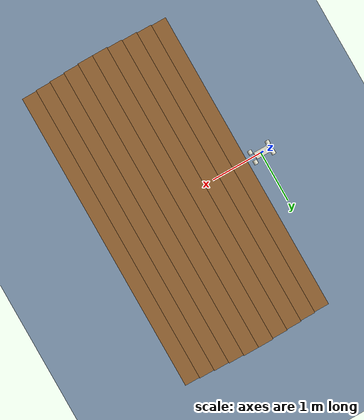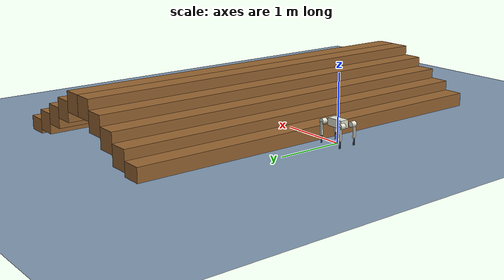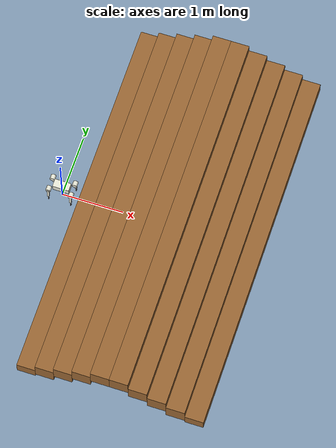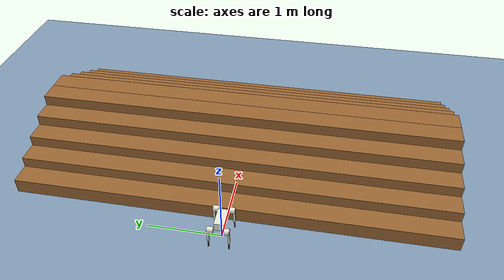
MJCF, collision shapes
<mujoco model="a1_description">
    <compiler angle="radian" meshdir="../meshes/" />
    <size njmax="500" nconmax="100" />
    <option gravity='0 0 -9.806' iterations='50' solver='Newton' timestep='0.002'/>

    <default>
        <geom contype="1" conaffinity="1" friction="0.6 0.3 0.3" rgba="0.5 0.6 0.7 1" margin="0.001" group="0"/>

        <light castshadow="false" diffuse="1 1 1"/>
        <motor ctrlrange="-33.5 33.5" ctrllimited="true"/>
        <camera fovy="60"/>
        <joint damping="0.01" armature="0.01" frictionloss="0.2" />

    </default>

    <asset>
        <mesh name="trunk" file="trunk.stl" />
        <mesh name="hip" file="hip.stl" />
        <mesh name="thigh_mirror" file="thigh_mirror.stl" />
        <mesh name="calf" file="calf.stl" />
        <mesh name="thigh" file="thigh.stl" />
    </asset>

    <visual>
        <headlight diffuse="0.6 0.6 0.6" ambient="0.1 0.1 0.1" specular="0.9 0.9 0.9"/>
        <rgba haze="0.15 0.25 0.35 1"/>
        <global azimuth="-140" elevation="-20"/>
    </visual>
    <asset>
        <texture type="skybox" builtin="flat" rgb1="0 0 0" rgb2="0 0 0" width="512" height="512"/>
        <texture type="2d" name="groundplane" builtin="checker" mark="edge" rgb1="0.2 0.3 0.4" rgb2="0.1 0.2 0.3" markrgb="0.8 0.8 0.8" width="300" height="300"/>
        <material name="groundplane" texture="groundplane" texuniform="true" texrepeat="5 5" reflectance="0.2"/>
    </asset>

    <worldbody>
        <light directional="true" diffuse=".8 .8 .8" pos="0 0 10" dir="0 0 -10"/>
        <camera name="track" mode="trackcom" pos="0 -1.3 1.6" xyaxes="1 0 0 0 0.707 0.707"/>
        <geom name='floor' type='plane' conaffinity='1' condim='3' contype='1' material='groundplane' pos='0 0 0' size='0 0 1'/>

        <!-- 五级楼梯 -->
        <!-- size:长方体半尺寸 x半长 y半宽 z半高； pos:几何体中心坐标(x,y,z) friction:摩擦系数(滑动、扭转、滚动) rgbs:颜色和透明度(可选)-->

        <!-- 五级楼梯 -->
        <!-- size:长方体半尺寸 x半长 y半宽 z半高； pos:几何体中心坐标(x,y,z) friction:摩擦系数(滑动、扭转、滚动) rgbs:颜色和透明度(可选)-->
        <geom name="step1" type="box" size="0.15 3.0 0.15" pos="0.45 0 0.05" friction="1 0.5 0.1" rgba="0.6 0.4 0.2 1"/>
        <geom name="step2" type="box" size="0.15 3.0 0.15" pos="0.75 0 0.20" friction="1 0.5 0.1" rgba="0.6 0.4 0.2 1"/>
        <geom name="step3" type="box" size="0.15 3.0 0.15" pos="1.05 0 0.35" friction="1 0.5 0.1" rgba="0.6 0.4 0.2 1"/>
        <geom name="step4" type="box" size="0.15 3.0 0.15" pos="1.35 0 0.50" friction="1 0.5 0.1" rgba="0.6 0.4 0.2 1"/>
        <geom name="step5" type="box" size="0.15 3.0 0.15" pos="1.65 0 0.65" friction="1 0.5 0.1" rgba="0.6 0.4 0.2 1"/>
        <geom name="step6" type="box" size="0.15 3.0 0.15" pos="1.95 0 0.65" friction="1 0.5 0.1" rgba="0.6 0.4 0.2 1"/>
        <geom name="step7" type="box" size="0.15 3.0 0.15" pos="2.25 0 0.50" friction="1 0.5 0.1" rgba="0.6 0.4 0.2 1"/>
        <geom name="step8" type="box" size="0.15 3.0 0.15" pos="2.55 0 0.35" friction="1 0.5 0.1" rgba="0.6 0.4 0.2 1"/>
        <geom name="step9" type="box" size="0.15 3.0 0.15" pos="2.85 0 0.20" friction="1 0.5 0.1" rgba="0.6 0.4 0.2 1"/>
        <geom name="step10" type="box" size="0.15 3.0 0.15" pos="3.15 0 0.05" friction="1 0.5 0.1" rgba="0.6 0.4 0.2 1"/>

        <!-- 十级楼梯 -->

        <body name="trunk" pos="0 0 0.3">
            <inertial pos="0.0127283 0.00218554 0.000514891" quat="0.00186575 0.711506 0.000389649 0.702677" mass="4.714" diaginertia="0.0648213 0.0565803 0.0169323" />
            <joint type="free" />
            <geom type="mesh" contype="0" conaffinity="0" group="1" rgba="0.913725 0.913725 0.847059 1" mesh="trunk" />
            <geom size="0.1335 0.066 0.057" type="box" rgba="0.913725 0.913725 0.847059 0" />
            <geom size="0.0005 0.0005 0.0005" type="box" contype="0" conaffinity="0" group="1" rgba="0.8 0 0 0" />
            <geom size="0.0005 0.0005 0.0005" type="box" rgba="0.8 0 0 0" />
            <site name="imu" pos="0 0 0"/>

            <body name="FL_hip" pos="0.183 0.047 0">
                <inertial pos="-0.003311 0.000635 3.1e-05" quat="0.494499 0.491507 0.506268 0.507528" mass="0.696" diaginertia="0.000807752 0.00055293 0.000468983" />
                <joint name="FL_hip_joint" pos="0 0 0" axis="1 0 0" limited="true" range="-0.802851 0.802851" />
                <geom type="mesh" contype="0" conaffinity="0" group="1" rgba="0.913725 0.913725 0.847059 1" mesh="hip" />
                <geom size="0.04 0.04" pos="0 0.055 0" quat="0.707107 0.707107 0 0" type="cylinder" rgba="0.913725 0.913725 0.847059 0" />
                <body name="FL_thigh" pos="0 0.08505 0">
                    <inertial pos="-0.003237 -0.022327 -0.027326" quat="0.999125 0.00256393 -0.0409531 0.00806091" mass="1.013" diaginertia="0.00555739 0.00513936 0.00133944" />
                    <joint name="FL_thigh_joint" pos="0 0 0" axis="0 1 0" limited="true" range="-1.0472 4.18879" />
                    <geom type="mesh" contype="0" conaffinity="0" group="1" rgba="0.913725 0.913725 0.847059 1" mesh="thigh" />
                    <geom size="0.1 0.01225 0.017" pos="0 0 -0.1" quat="0.707107 0 0.707107 0" type="box" rgba="0.913725 0.913725 0.847059 0" />
                    <body name="FL_calf" pos="0 0 -0.2">
                        <inertial pos="0.00472659 0 -0.131975" quat="0.706886 0.017653 0.017653 0.706886" mass="0.226" diaginertia="0.00340344 0.00339393 3.54834e-05" />
                        <joint name="FL_calf_joint" pos="0 0 0" axis="0 1 0" limited="true" range="-2.69653 -0.916298" />
                        <geom type="mesh" contype="0" conaffinity="0" group="1" rgba="0 0 0 1" mesh="calf" />
                        <geom size="0.1 0.008 0.008" pos="0 0 -0.1" quat="0.707107 0 0.707107 0" type="box" rgba="0 0 0 0" />
                        <geom size="0.01" pos="0 0 -0.2" contype="0" conaffinity="0" group="1" rgba="0 0 0 1" />
                        <geom size="0.02" pos="0 0 -0.2" rgba="0 0 0 1" />
                    </body>
                </body>
            </body>
            <body name="FR_hip" pos="0.183 -0.047 0">
                <inertial pos="-0.003311 -0.000635 3.1e-05" quat="0.507528 0.506268 0.491507 0.494499" mass="0.696" diaginertia="0.000807752 0.00055293 0.000468983" />
                <joint name="FR_hip_joint" pos="0 0 0" axis="1 0 0" limited="true" range="-0.802851 0.802851" />
                <geom quat="0 1 0 0" type="mesh" contype="0" conaffinity="0" group="1" rgba="0.913725 0.913725 0.847059 1" mesh="hip" />
                <geom size="0.04 0.04" pos="0 -0.055 0" quat="0.707107 0.707107 0 0" type="cylinder" rgba="0.913725 0.913725 0.847059 0" />
                <body name="FR_thigh" pos="0 -0.08505 0">
                    <inertial pos="-0.003237 0.022327 -0.027326" quat="0.999125 -0.00256393 -0.0409531 -0.00806091" mass="1.013" diaginertia="0.00555739 0.00513936 0.00133944" />
                    <joint name="FR_thigh_joint" pos="0 0 0" axis="0 1 0" limited="true" range="-1.0472 4.18879" />
                    <geom type="mesh" contype="0" conaffinity="0" group="1" rgba="0.913725 0.913725 0.847059 1" mesh="thigh_mirror" />
                    <geom size="0.1 0.01225 0.017" pos="0 0 -0.1" quat="0.707107 0 0.707107 0" type="box" rgba="0.913725 0.913725 0.847059 0" />
                    <body name="FR_calf" pos="0 0 -0.2">
                        <inertial pos="0.00472659 0 -0.131975" quat="0.706886 0.017653 0.017653 0.706886" mass="0.226" diaginertia="0.00340344 0.00339393 3.54834e-05" />
                        <joint name="FR_calf_joint" pos="0 0 0" axis="0 1 0" limited="true" range="-2.69653 -0.916298" />
                        <geom type="mesh" contype="0" conaffinity="0" group="1" rgba="0 0 0 1" mesh="calf" />
                        <geom size="0.1 0.008 0.008" pos="0 0 -0.1" quat="0.707107 0 0.707107 0" type="box" rgba="0 0 0 0" />
                        <geom size="0.01" pos="0 0 -0.2" contype="0" conaffinity="0" group="1" rgba="0 0 0 1" />
                        <geom size="0.02" pos="0 0 -0.2" rgba="0 0 0 1" />
                    </body>
                </body>
            </body>
            <body name="RL_hip" pos="-0.183 0.047 0">
                <inertial pos="0.003311 0.000635 3.1e-05" quat="0.506268 0.507528 0.494499 0.491507" mass="0.696" diaginertia="0.000807752 0.00055293 0.000468983" />
                <joint name="RL_hip_joint" pos="0 0 0" axis="1 0 0" limited="true" range="-0.802851 0.802851" />
                <geom quat="0 0 1 0" type="mesh" contype="0" conaffinity="0" group="1" rgba="0.913725 0.913725 0.847059 1" mesh="hip" />
                <geom size="0.04 0.04" pos="0 0.055 0" quat="0.707107 0.707107 0 0" type="cylinder" rgba="0.913725 0.913725 0.847059 0" />
                <body name="RL_thigh" pos="0 0.08505 0">
                    <inertial pos="-0.003237 -0.022327 -0.027326" quat="0.999125 0.00256393 -0.0409531 0.00806091" mass="1.013" diaginertia="0.00555739 0.00513936 0.00133944" />
                    <joint name="RL_thigh_joint" pos="0 0 0" axis="0 1 0" limited="true" range="-1.0472 4.18879" />
                    <geom type="mesh" contype="0" conaffinity="0" group="1" rgba="0.913725 0.913725 0.847059 1" mesh="thigh" />
                    <geom size="0.1 0.01225 0.017" pos="0 0 -0.1" quat="0.707107 0 0.707107 0" type="box" rgba="0.913725 0.913725 0.847059 0" />
                    <body name="RL_calf" pos="0 0 -0.2">
                        <inertial pos="0.00472659 0 -0.131975" quat="0.706886 0.017653 0.017653 0.706886" mass="0.226" diaginertia="0.00340344 0.00339393 3.54834e-05" />
                        <joint name="RL_calf_joint" pos="0 0 0" axis="0 1 0" limited="true" range="-2.69653 -0.916298" />
                        <geom type="mesh" contype="0" conaffinity="0" group="1" rgba="0 0 0 1" mesh="calf" />
                        <geom size="0.1 0.008 0.008" pos="0 0 -0.1" quat="0.707107 0 0.707107 0" type="box" rgba="0 0 0 0" />
                        <geom size="0.01" pos="0 0 -0.2" contype="0" conaffinity="0" group="1" rgba="0 0 0 1" />
                        <geom size="0.02" pos="0 0 -0.2" rgba="0 0 0 1" />
                    </body>
                </body>
            </body>
            <body name="RR_hip" pos="-0.183 -0.047 0">
                <inertial pos="0.003311 -0.000635 3.1e-05" quat="0.491507 0.494499 0.507528 0.506268" mass="0.696" diaginertia="0.000807752 0.00055293 0.000468983" />
                <joint name="RR_hip_joint" pos="0 0 0" axis="1 0 0" limited="true" range="-0.802851 0.802851" />
                <geom quat="0 0 0 -1" type="mesh" contype="0" conaffinity="0" group="1" rgba="0.913725 0.913725 0.847059 1" mesh="hip" />
                <geom size="0.04 0.04" pos="0 -0.055 0" quat="0.707107 0.707107 0 0" type="cylinder" rgba="0.913725 0.913725 0.847059 0" />
                <body name="RR_thigh" pos="0 -0.08505 0">
                    <inertial pos="-0.003237 0.022327 -0.027326" quat="0.999125 -0.00256393 -0.0409531 -0.00806091" mass="1.013" diaginertia="0.00555739 0.00513936 0.00133944" />
                    <joint name="RR_thigh_joint" pos="0 0 0" axis="0 1 0" limited="true" range="-1.0472 4.18879" />
                    <geom type="mesh" contype="0" conaffinity="0" group="1" rgba="0.913725 0.913725 0.847059 1" mesh="thigh_mirror" />
                    <geom size="0.1 0.01225 0.017" pos="0 0 -0.1" quat="0.707107 0 0.707107 0" type="box" rgba="0.913725 0.913725 0.847059 0" />
                    <body name="RR_calf" pos="0 0 -0.2">
                        <inertial pos="0.00472659 0 -0.131975" quat="0.706886 0.017653 0.017653 0.706886" mass="0.226" diaginertia="0.00340344 0.00339393 3.54834e-05" />
                        <joint name="RR_calf_joint" pos="0 0 0" axis="0 1 0" limited="true" range="-2.69653 -0.916298" />
                        <geom type="mesh" contype="0" conaffinity="0" group="1" rgba="0 0 0 1" mesh="calf" />
                        <geom size="0.1 0.008 0.008" pos="0 0 -0.1" quat="0.707107 0 0.707107 0" type="box" rgba="0 0 0 0" />
                        <geom size="0.01" pos="0 0 -0.2" contype="0" conaffinity="0" group="1" rgba="0 0 0 1" />
                        <geom size="0.02" pos="0 0 -0.2" rgba="0 0 0 1" />
                    </body>
                </body>
            </body>
        </body>
    </worldbody>
    <actuator>
        <motor name="FL_hip"     gear="1" joint="FL_hip_joint"/>
        <motor name="FL_thigh"     gear="1" joint="FL_thigh_joint"/>
        <motor name="FL_calf"     gear="1" joint="FL_calf_joint"/>
        <motor name="FR_hip"       gear="1" joint="FR_hip_joint"/>
        <motor name="FR_thigh"       gear="1" joint="FR_thigh_joint"/>
        <motor name="FR_calf"       gear="1" joint="FR_calf_joint"/>
        <motor name="RL_hip"      gear="1" joint="RL_hip_joint"/>
        <motor name="RL_thigh"      gear="1" joint="RL_thigh_joint"/>
        <motor name="RL_calf"      gear="1" joint="RL_calf_joint"/>
        <motor name="RR_hip"      gear="1" joint="RR_hip_joint"/>
        <motor name="RR_thigh"   gear="1" joint="RR_thigh_joint"/>
        <motor name="RR_calf"   gear="1" joint="RR_calf_joint" />
    </actuator>

    <sensor>
        <jointpos name="FL_hip_pos"     joint="FL_hip_joint"/>
        <jointpos name="FL_thigh_pos"   joint="FL_thigh_joint"/>
        <jointpos name="FL_calf_pos"    joint="FL_calf_joint"/>
        <jointpos name="FR_hip_pos"     joint="FR_hip_joint"/>
        <jointpos name="FR_thigh_pos"   joint="FR_thigh_joint"/>
        <jointpos name="FR_calf_pos"    joint="FR_calf_joint"/>
        <jointpos name="RL_hip_pos"     joint="RL_hip_joint"/>
        <jointpos name="RL_thigh_pos"   joint="RL_thigh_joint"/>
        <jointpos name="RL_calf_pos"    joint="RL_calf_joint"/>
        <jointpos name="RR_hip_pos"     joint="RR_hip_joint"/>
        <jointpos name="RR_thigh_pos"   joint="RR_thigh_joint"/>
        <jointpos name="RR_calf_pos"    joint="RR_calf_joint" />

        <jointvel name="FL_hip_vel"     joint="FL_hip_joint"/>
        <jointvel name="FL_thigh_vel"   joint="FL_thigh_joint"/>
        <jointvel name="FL_calf_vel"    joint="FL_calf_joint"/>
        <jointvel name="FR_hip_vel"     joint="FR_hip_joint"/>
        <jointvel name="FR_thigh_vel"   joint="FR_thigh_joint"/>
        <jointvel name="FR_calf_vel"    joint="FR_calf_joint"/>
        <jointvel name="RL_hip_vel"     joint="RL_hip_joint"/>
        <jointvel name="RL_thigh_vel"   joint="RL_thigh_joint"/>
        <jointvel name="RL_calf_vel"    joint="RL_calf_joint"/>
        <jointvel name="RR_hip_vel"     joint="RR_hip_joint"/>
        <jointvel name="RR_thigh_vel"   joint="RR_thigh_joint"/>
        <jointvel name="RR_calf_vel"    joint="RR_calf_joint" />

        <accelerometer name="Body_Acc" site="imu"/>

        <gyro name="Body_Gyro" site="imu"/>

        <framepos name="Body_Pos" objtype="site" objname="imu"/>

        <framequat name="Body_Quat" objtype="site" objname="imu"/>

    </sensor>

</mujoco>
